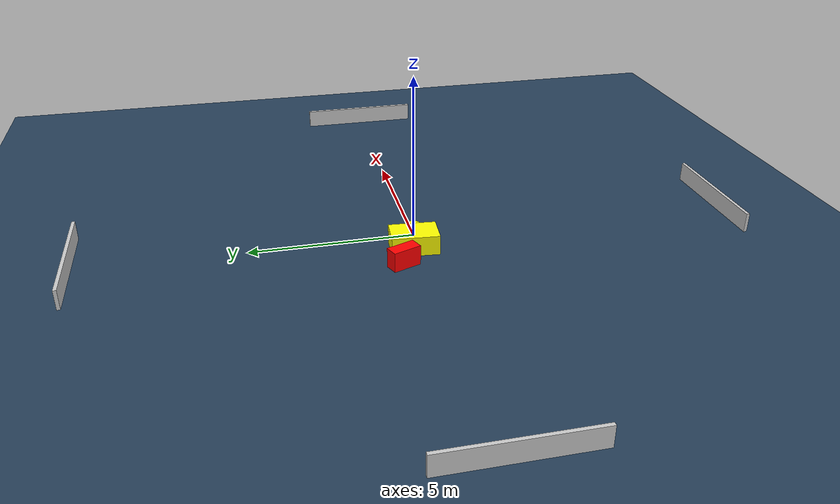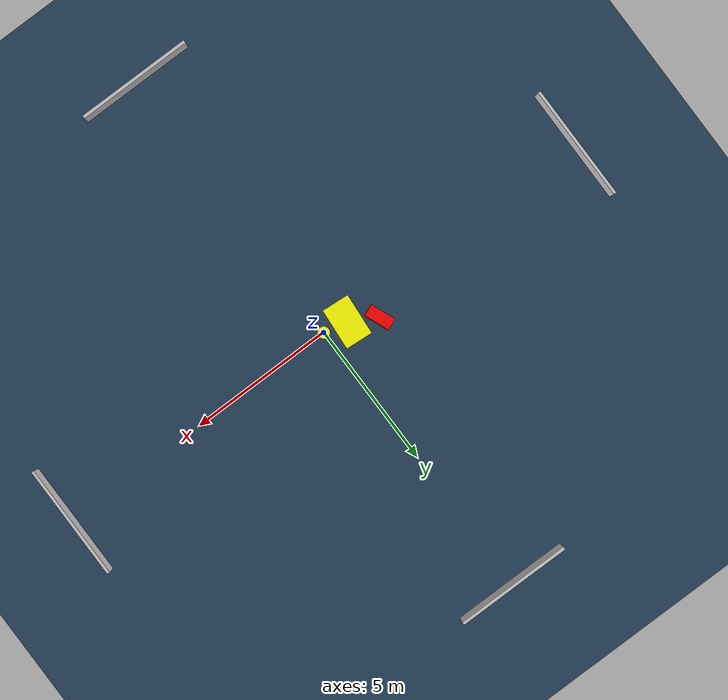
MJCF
<?xml version="1.0" ?>
<mujoco model="generated_environment">
  <option timestep="0.01" integrator="RK4" cone="elliptic"/>
  <default>
    <geom density="1"/>
  </default>
  <asset>
    <texture builtin="gradient" height="3072" name="skybox" rgb1="0.3 0.5 0.7" rgb2="0 0 0" type="skybox" width="512"/>
    <texture builtin="checker" height="300" name="groundplane" rgb1="0.2 0.3 0.4" rgb2="0.1 0.2 0.3" type="2d" width="300"/>
    <material name="groundplane" reflectance="0.2" texrepeat="5 5" texture="groundplane"/>
  </asset>
  <worldbody>
    <light dir="0 0 -1" directional="true" pos="0 0 1.5"/>
    <geom condim="3" friction="0.5 0.005 0.001" material="groundplane" name="floor" pos="0 0 0" size="0 0 0.05" type="plane"/>
    <body name="walls">
      <geom name="wall_1" condim="4" pos="-10.0 0.0 0.3" rgba="0.800000011920929 0.800000011920929 0.800000011920929 1.0" size="0.05 2.0 0.3" type="box"/>
      <geom name="wall_2" condim="4" pos="10.0 0.0 0.3" rgba="0.800000011920929 0.800000011920929 0.800000011920929 1.0" size="0.05 2.0 0.3" type="box"/>
      <geom name="wall_3" condim="4" pos="0.0 -10.0 0.3" rgba="0.800000011920929 0.800000011920929 0.800000011920929 1.0" size="2.0 0.05 0.3" type="box"/>
      <geom name="wall_4" condim="4" pos="0.0 10.0 0.3" rgba="0.800000011920929 0.800000011920929 0.800000011920929 1.0" size="2.0 0.05 0.3" type="box"/>
    </body>
    <body name="robot">
      <joint name="joint_x" type="slide" pos="0 0 0" axis="1 0 0"/>
      <joint name="joint_y" type="slide" pos="0 0 0" axis="0 1 0"/>
      <geom name="robot" type="cylinder" pos="0.0 0.0 0.2" size="0.2 0.2 0.0" mass="5.0" friction="1.0 0.005 0.0001" condim="4" rgba="1.0 1.0 0.0 1.0"/>
    </body>
    <body name="obstacle_1_movable">
      <geom name="obstacle_1_movable" condim="4" pos="-0.7947403227328452 0.17085603652866735 0.3" euler="0 0 265.62247666372366" friction="0.0 0.005 0.001" rgba="1.0 1.0 0.0 1.0" size="0.7108873937422766 0.46901334942385314 0.3" type="box" mass="0.1"/>
      <joint type="free"/>
    </body>
    <body name="obstacle_2_static">
      <geom name="obstacle_2_static" condim="4" pos="-1.7107025734914176 0.6703467129137352 0.3" euler="0 0 21.5563012822769" friction="0.0 0.005 0.001" rgba="1.0 0.0 0.0 1.0" size="0.2032661470066508 0.43861036432600936 0.3" type="box"/>
    </body>
  </worldbody>
  <actuator>
    <motor name="actuator_x" joint="joint_x" gear="1" ctrlrange="-1 1"/>
    <motor name="actuator_y" joint="joint_y" gear="1" ctrlrange="-1 1"/>
  </actuator>
</mujoco>
